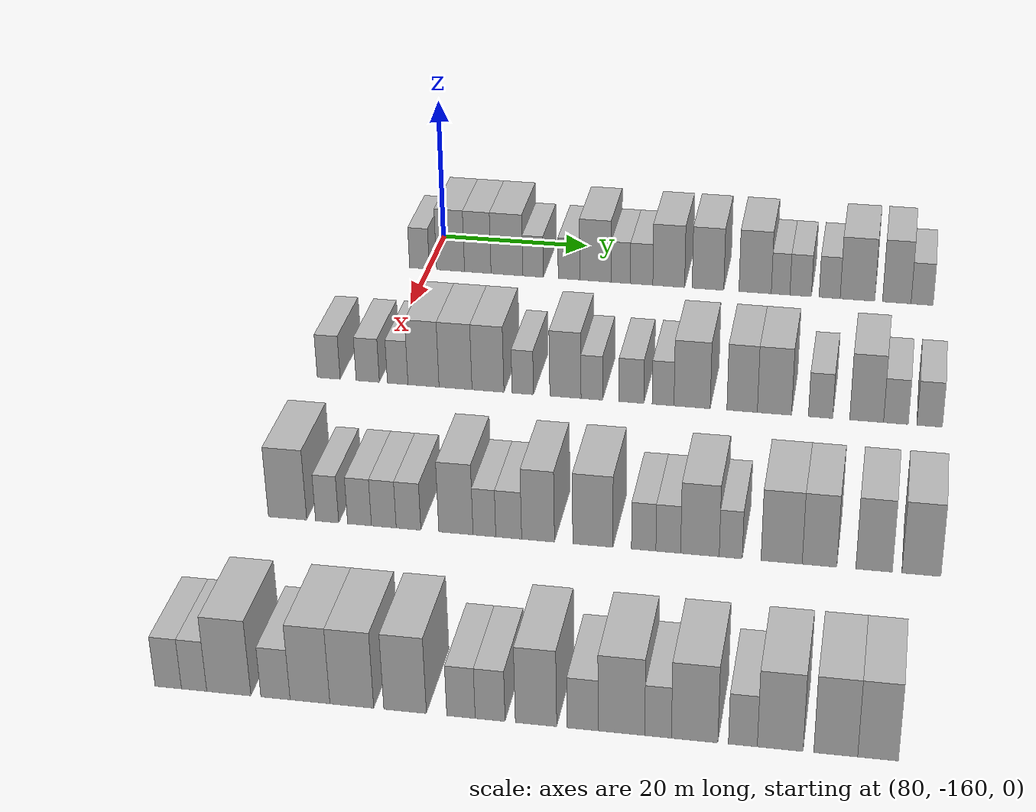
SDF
<sdf version="1.6">
 <world name="default">
  <model name="building_530">
   <static>1</static>
   <pose>85.0000 -161.2030 0 0.000000 0.000000 0.000000</pose>
   <link name="link">
    <pose>0 0 3.00 0 0 0</pose>
    <collision name="collision"><geometry><box><size>10.0000 2.6979 6.0000</size></box></geometry></collision>
    <visual name="visual">
     <cast_shadows>0</cast_shadows>
     <geometry><box><size>10.0000 2.6979 6.0000</size></box></geometry>
     <material>
      <script>
       <uri>model://HANNAS_wall/materials/scripts</uri>
       <uri>model://HANNAS_wall/materials/textures</uri>
       <name>vrc/HANNAS_wall</name>
      </script>
     </material>
    </visual>
   </link>
  </model>
  <model name="building_531">
   <static>1</static>
   <pose>85.0000 -156.9419 0 0.000000 0.000000 0.000000</pose>
   <link name="link">
    <pose>0 0 4.50 0 0 0</pose>
    <collision name="collision"><geometry><box><size>10.0000 3.8242 9.0000</size></box></geometry></collision>
    <visual name="visual">
     <cast_shadows>0</cast_shadows>
     <geometry><box><size>10.0000 3.8242 9.0000</size></box></geometry>
     <material>
      <script>
       <uri>model://HANNAS_wall/materials/scripts</uri>
       <uri>model://HANNAS_wall/materials/textures</uri>
       <name>vrc/HANNAS_wall</name>
      </script>
     </material>
    </visual>
   </link>
  </model>
  <model name="building_532">
   <static>1</static>
   <pose>85.0000 -153.2254 0 0.000000 0.000000 0.000000</pose>
   <link name="link">
    <pose>0 0 4.50 0 0 0</pose>
    <collision name="collision"><geometry><box><size>10.0000 3.6088 9.0000</size></box></geometry></collision>
    <visual name="visual">
     <cast_shadows>0</cast_shadows>
     <geometry><box><size>10.0000 3.6088 9.0000</size></box></geometry>
     <material>
      <script>
       <uri>model://HANNAS_wall/materials/scripts</uri>
       <uri>model://HANNAS_wall/materials/textures</uri>
       <name>vrc/HANNAS_wall</name>
      </script>
     </material>
    </visual>
   </link>
  </model>
  <model name="building_533">
   <static>1</static>
   <pose>85.0000 -149.2553 0 0.000000 0.000000 0.000000</pose>
   <link name="link">
    <pose>0 0 4.50 0 0 0</pose>
    <collision name="collision"><geometry><box><size>10.0000 4.3315 9.0000</size></box></geometry></collision>
    <visual name="visual">
     <cast_shadows>0</cast_shadows>
     <geometry><box><size>10.0000 4.3315 9.0000</size></box></geometry>
     <material>
      <script>
       <uri>model://HANNAS_wall/materials/scripts</uri>
       <uri>model://HANNAS_wall/materials/textures</uri>
       <name>vrc/HANNAS_wall</name>
      </script>
     </material>
    </visual>
   </link>
  </model>
  <model name="building_534">
   <static>1</static>
   <pose>85.0000 -145.7009 0 0.000000 0.000000 0.000000</pose>
   <link name="link">
    <pose>0 0 3.00 0 0 0</pose>
    <collision name="collision"><geometry><box><size>10.0000 2.7774 6.0000</size></box></geometry></collision>
    <visual name="visual">
     <cast_shadows>0</cast_shadows>
     <geometry><box><size>10.0000 2.7774 6.0000</size></box></geometry>
     <material>
      <script>
       <uri>model://HANNAS_wall/materials/scripts</uri>
       <uri>model://HANNAS_wall/materials/textures</uri>
       <name>vrc/HANNAS_wall</name>
      </script>
     </material>
    </visual>
   </link>
  </model>
  <model name="building_535">
   <static>1</static>
   <pose>85.0000 -140.8611 0 0.000000 0.000000 0.000000</pose>
   <link name="link">
    <pose>0 0 3.00 0 0 0</pose>
    <collision name="collision"><geometry><box><size>10.0000 2.9022 6.0000</size></box></geometry></collision>
    <visual name="visual">
     <cast_shadows>0</cast_shadows>
     <geometry><box><size>10.0000 2.9022 6.0000</size></box></geometry>
     <material>
      <script>
       <uri>model://HANNAS_wall/materials/scripts</uri>
       <uri>model://HANNAS_wall/materials/textures</uri>
       <name>vrc/HANNAS_wall</name>
      </script>
     </material>
    </visual>
   </link>
  </model>
  <model name="building_536">
   <static>1</static>
   <pose>85.0000 -137.3035 0 0.000000 0.000000 0.000000</pose>
   <link name="link">
    <pose>0 0 4.50 0 0 0</pose>
    <collision name="collision"><geometry><box><size>10.0000 4.2129 9.0000</size></box></geometry></collision>
    <visual name="visual">
     <cast_shadows>0</cast_shadows>
     <geometry><box><size>10.0000 4.2129 9.0000</size></box></geometry>
     <material>
      <script>
       <uri>model://HANNAS_wall/materials/scripts</uri>
       <uri>model://HANNAS_wall/materials/textures</uri>
       <name>vrc/HANNAS_wall</name>
      </script>
     </material>
    </visual>
   </link>
  </model>
  <model name="building_537">
   <static>1</static>
   <pose>85.0000 -133.9065 0 0.000000 0.000000 0.000000</pose>
   <link name="link">
    <pose>0 0 3.00 0 0 0</pose>
    <collision name="collision"><geometry><box><size>10.0000 2.5810 6.0000</size></box></geometry></collision>
    <visual name="visual">
     <cast_shadows>0</cast_shadows>
     <geometry><box><size>10.0000 2.5810 6.0000</size></box></geometry>
     <material>
      <script>
       <uri>model://HANNAS_wall/materials/scripts</uri>
       <uri>model://HANNAS_wall/materials/textures</uri>
       <name>vrc/HANNAS_wall</name>
      </script>
     </material>
    </visual>
   </link>
  </model>
  <model name="building_538">
   <static>1</static>
   <pose>85.0000 -131.1212 0 0.000000 0.000000 0.000000</pose>
   <link name="link">
    <pose>0 0 3.00 0 0 0</pose>
    <collision name="collision"><geometry><box><size>10.0000 2.9898 6.0000</size></box></geometry></collision>
    <visual name="visual">
     <cast_shadows>0</cast_shadows>
     <geometry><box><size>10.0000 2.9898 6.0000</size></box></geometry>
     <material>
      <script>
       <uri>model://HANNAS_wall/materials/scripts</uri>
       <uri>model://HANNAS_wall/materials/textures</uri>
       <name>vrc/HANNAS_wall</name>
      </script>
     </material>
    </visual>
   </link>
  </model>
  <model name="building_539">
   <static>1</static>
   <pose>85.0000 -127.5106 0 0.000000 0.000000 0.000000</pose>
   <link name="link">
    <pose>0 0 4.50 0 0 0</pose>
    <collision name="collision"><geometry><box><size>10.0000 4.2312 9.0000</size></box></geometry></collision>
    <visual name="visual">
     <cast_shadows>0</cast_shadows>
     <geometry><box><size>10.0000 4.2312 9.0000</size></box></geometry>
     <material>
      <script>
       <uri>model://HANNAS_wall/materials/scripts</uri>
       <uri>model://HANNAS_wall/materials/textures</uri>
       <name>vrc/HANNAS_wall</name>
      </script>
     </material>
    </visual>
   </link>
  </model>
  <model name="building_540">
   <static>1</static>
   <pose>85.0000 -122.3032 0 0.000000 0.000000 0.000000</pose>
   <link name="link">
    <pose>0 0 4.50 0 0 0</pose>
    <collision name="collision"><geometry><box><size>10.0000 4.1836 9.0000</size></box></geometry></collision>
    <visual name="visual">
     <cast_shadows>0</cast_shadows>
     <geometry><box><size>10.0000 4.1836 9.0000</size></box></geometry>
     <material>
      <script>
       <uri>model://HANNAS_wall/materials/scripts</uri>
       <uri>model://HANNAS_wall/materials/textures</uri>
       <name>vrc/HANNAS_wall</name>
      </script>
     </material>
    </visual>
   </link>
  </model>
  <model name="building_541">
   <static>1</static>
   <pose>85.0000 -116.0834 0 0.000000 0.000000 0.000000</pose>
   <link name="link">
    <pose>0 0 4.50 0 0 0</pose>
    <collision name="collision"><geometry><box><size>10.0000 4.2561 9.0000</size></box></geometry></collision>
    <visual name="visual">
     <cast_shadows>0</cast_shadows>
     <geometry><box><size>10.0000 4.2561 9.0000</size></box></geometry>
     <material>
      <script>
       <uri>model://HANNAS_wall/materials/scripts</uri>
       <uri>model://HANNAS_wall/materials/textures</uri>
       <name>vrc/HANNAS_wall</name>
      </script>
     </material>
    </visual>
   </link>
  </model>
  <model name="building_542">
   <static>1</static>
   <pose>85.0000 -112.7323 0 0.000000 0.000000 0.000000</pose>
   <link name="link">
    <pose>0 0 3.00 0 0 0</pose>
    <collision name="collision"><geometry><box><size>10.0000 2.4459 6.0000</size></box></geometry></collision>
    <visual name="visual">
     <cast_shadows>0</cast_shadows>
     <geometry><box><size>10.0000 2.4459 6.0000</size></box></geometry>
     <material>
      <script>
       <uri>model://HANNAS_wall/materials/scripts</uri>
       <uri>model://HANNAS_wall/materials/textures</uri>
       <name>vrc/HANNAS_wall</name>
      </script>
     </material>
    </visual>
   </link>
  </model>
  <model name="building_543">
   <static>1</static>
   <pose>85.0000 -110.1023 0 0.000000 0.000000 0.000000</pose>
   <link name="link">
    <pose>0 0 3.00 0 0 0</pose>
    <collision name="collision"><geometry><box><size>10.0000 2.8143 6.0000</size></box></geometry></collision>
    <visual name="visual">
     <cast_shadows>0</cast_shadows>
     <geometry><box><size>10.0000 2.8143 6.0000</size></box></geometry>
     <material>
      <script>
       <uri>model://HANNAS_wall/materials/scripts</uri>
       <uri>model://HANNAS_wall/materials/textures</uri>
       <name>vrc/HANNAS_wall</name>
      </script>
     </material>
    </visual>
   </link>
  </model>
  <model name="building_544">
   <static>1</static>
   <pose>85.0000 -106.3203 0 0.000000 0.000000 0.000000</pose>
   <link name="link">
    <pose>0 0 3.00 0 0 0</pose>
    <collision name="collision"><geometry><box><size>10.0000 2.7497 6.0000</size></box></geometry></collision>
    <visual name="visual">
     <cast_shadows>0</cast_shadows>
     <geometry><box><size>10.0000 2.7497 6.0000</size></box></geometry>
     <material>
      <script>
       <uri>model://HANNAS_wall/materials/scripts</uri>
       <uri>model://HANNAS_wall/materials/textures</uri>
       <name>vrc/HANNAS_wall</name>
      </script>
     </material>
    </visual>
   </link>
  </model>
  <model name="building_545">
   <static>1</static>
   <pose>85.0000 -102.6970 0 0.000000 0.000000 0.000000</pose>
   <link name="link">
    <pose>0 0 4.50 0 0 0</pose>
    <collision name="collision"><geometry><box><size>10.0000 4.4968 9.0000</size></box></geometry></collision>
    <visual name="visual">
     <cast_shadows>0</cast_shadows>
     <geometry><box><size>10.0000 4.4968 9.0000</size></box></geometry>
     <material>
      <script>
       <uri>model://HANNAS_wall/materials/scripts</uri>
       <uri>model://HANNAS_wall/materials/textures</uri>
       <name>vrc/HANNAS_wall</name>
      </script>
     </material>
    </visual>
   </link>
  </model>
  <model name="building_546">
   <static>1</static>
   <pose>85.0000 -97.6022 0 0.000000 0.000000 0.000000</pose>
   <link name="link">
    <pose>0 0 4.50 0 0 0</pose>
    <collision name="collision"><geometry><box><size>10.0000 3.6930 9.0000</size></box></geometry></collision>
    <visual name="visual">
     <cast_shadows>0</cast_shadows>
     <geometry><box><size>10.0000 3.6930 9.0000</size></box></geometry>
     <material>
      <script>
       <uri>model://HANNAS_wall/materials/scripts</uri>
       <uri>model://HANNAS_wall/materials/textures</uri>
       <name>vrc/HANNAS_wall</name>
      </script>
     </material>
    </visual>
   </link>
  </model>
  <model name="building_547">
   <static>1</static>
   <pose>85.0000 -94.3333 0 0.000000 0.000000 0.000000</pose>
   <link name="link">
    <pose>0 0 3.00 0 0 0</pose>
    <collision name="collision"><geometry><box><size>10.0000 2.8448 6.0000</size></box></geometry></collision>
    <visual name="visual">
     <cast_shadows>0</cast_shadows>
     <geometry><box><size>10.0000 2.8448 6.0000</size></box></geometry>
     <material>
      <script>
       <uri>model://HANNAS_wall/materials/scripts</uri>
       <uri>model://HANNAS_wall/materials/textures</uri>
       <name>vrc/HANNAS_wall</name>
      </script>
     </material>
    </visual>
   </link>
  </model>
  <model name="building_768">
   <static>1</static>
   <pose>115.0000 -165.5507 0 0.000000 0.000000 0.000000</pose>
   <link name="link">
    <pose>0 0 3.00 0 0 0</pose>
    <collision name="collision"><geometry><box><size>10.0000 2.8790 6.0000</size></box></geometry></collision>
    <visual name="visual">
     <cast_shadows>0</cast_shadows>
     <geometry><box><size>10.0000 2.8790 6.0000</size></box></geometry>
     <material>
      <script>
       <uri>model://HANNAS_wall/materials/scripts</uri>
       <uri>model://HANNAS_wall/materials/textures</uri>
       <name>vrc/HANNAS_wall</name>
      </script>
     </material>
    </visual>
   </link>
  </model>
  <model name="building_769">
   <static>1</static>
   <pose>115.0000 -160.6531 0 0.000000 0.000000 0.000000</pose>
   <link name="link">
    <pose>0 0 3.00 0 0 0</pose>
    <collision name="collision"><geometry><box><size>10.0000 2.9162 6.0000</size></box></geometry></collision>
    <visual name="visual">
     <cast_shadows>0</cast_shadows>
     <geometry><box><size>10.0000 2.9162 6.0000</size></box></geometry>
     <material>
      <script>
       <uri>model://HANNAS_wall/materials/scripts</uri>
       <uri>model://HANNAS_wall/materials/textures</uri>
       <name>vrc/HANNAS_wall</name>
      </script>
     </material>
    </visual>
   </link>
  </model>
  <model name="building_770">
   <static>1</static>
   <pose>115.0000 -156.9150 0 0.000000 0.000000 0.000000</pose>
   <link name="link">
    <pose>0 0 3.00 0 0 0</pose>
    <collision name="collision"><geometry><box><size>10.0000 2.5600 6.0000</size></box></geometry></collision>
    <visual name="visual">
     <cast_shadows>0</cast_shadows>
     <geometry><box><size>10.0000 2.5600 6.0000</size></box></geometry>
     <material>
      <script>
       <uri>model://HANNAS_wall/materials/scripts</uri>
       <uri>model://HANNAS_wall/materials/textures</uri>
       <name>vrc/HANNAS_wall</name>
      </script>
     </material>
    </visual>
   </link>
  </model>
  <model name="building_771">
   <static>1</static>
   <pose>115.0000 -153.7031 0 0.000000 0.000000 0.000000</pose>
   <link name="link">
    <pose>0 0 4.50 0 0 0</pose>
    <collision name="collision"><geometry><box><size>10.0000 3.8638 9.0000</size></box></geometry></collision>
    <visual name="visual">
     <cast_shadows>0</cast_shadows>
     <geometry><box><size>10.0000 3.8638 9.0000</size></box></geometry>
     <material>
      <script>
       <uri>model://HANNAS_wall/materials/scripts</uri>
       <uri>model://HANNAS_wall/materials/textures</uri>
       <name>vrc/HANNAS_wall</name>
      </script>
     </material>
    </visual>
   </link>
  </model>
  <model name="building_772">
   <static>1</static>
   <pose>115.0000 -149.7324 0 0.000000 0.000000 0.000000</pose>
   <link name="link">
    <pose>0 0 4.50 0 0 0</pose>
    <collision name="collision"><geometry><box><size>10.0000 4.0776 9.0000</size></box></geometry></collision>
    <visual name="visual">
     <cast_shadows>0</cast_shadows>
     <geometry><box><size>10.0000 4.0776 9.0000</size></box></geometry>
     <material>
      <script>
       <uri>model://HANNAS_wall/materials/scripts</uri>
       <uri>model://HANNAS_wall/materials/textures</uri>
       <name>vrc/HANNAS_wall</name>
      </script>
     </material>
    </visual>
   </link>
  </model>
  <model name="building_773">
   <static>1</static>
   <pose>115.0000 -145.7221 0 0.000000 0.000000 0.000000</pose>
   <link name="link">
    <pose>0 0 4.50 0 0 0</pose>
    <collision name="collision"><geometry><box><size>10.0000 3.9430 9.0000</size></box></geometry></collision>
    <visual name="visual">
     <cast_shadows>0</cast_shadows>
     <geometry><box><size>10.0000 3.9430 9.0000</size></box></geometry>
     <material>
      <script>
       <uri>model://HANNAS_wall/materials/scripts</uri>
       <uri>model://HANNAS_wall/materials/textures</uri>
       <name>vrc/HANNAS_wall</name>
      </script>
     </material>
    </visual>
   </link>
  </model>
  <model name="building_774">
   <static>1</static>
   <pose>115.0000 -141.4366 0 0.000000 0.000000 0.000000</pose>
   <link name="link">
    <pose>0 0 3.00 0 0 0</pose>
    <collision name="collision"><geometry><box><size>10.0000 2.6280 6.0000</size></box></geometry></collision>
    <visual name="visual">
     <cast_shadows>0</cast_shadows>
     <geometry><box><size>10.0000 2.6280 6.0000</size></box></geometry>
     <material>
      <script>
       <uri>model://HANNAS_wall/materials/scripts</uri>
       <uri>model://HANNAS_wall/materials/textures</uri>
       <name>vrc/HANNAS_wall</name>
      </script>
     </material>
    </visual>
   </link>
  </model>
  <model name="building_775">
   <static>1</static>
   <pose>115.0000 -136.2184 0 0.000000 0.000000 0.000000</pose>
   <link name="link">
    <pose>0 0 4.50 0 0 0</pose>
    <collision name="collision"><geometry><box><size>10.0000 3.8084 9.0000</size></box></geometry></collision>
    <visual name="visual">
     <cast_shadows>0</cast_shadows>
     <geometry><box><size>10.0000 3.8084 9.0000</size></box></geometry>
     <material>
      <script>
       <uri>model://HANNAS_wall/materials/scripts</uri>
       <uri>model://HANNAS_wall/materials/textures</uri>
       <name>vrc/HANNAS_wall</name>
      </script>
     </material>
    </visual>
   </link>
  </model>
  <model name="building_776">
   <static>1</static>
   <pose>115.0000 -133.0041 0 0.000000 0.000000 0.000000</pose>
   <link name="link">
    <pose>0 0 3.00 0 0 0</pose>
    <collision name="collision"><geometry><box><size>10.0000 2.6203 6.0000</size></box></geometry></collision>
    <visual name="visual">
     <cast_shadows>0</cast_shadows>
     <geometry><box><size>10.0000 2.6203 6.0000</size></box></geometry>
     <material>
      <script>
       <uri>model://HANNAS_wall/materials/scripts</uri>
       <uri>model://HANNAS_wall/materials/textures</uri>
       <name>vrc/HANNAS_wall</name>
      </script>
     </material>
    </visual>
   </link>
  </model>
  <model name="building_777">
   <static>1</static>
   <pose>115.0000 -128.1949 0 0.000000 0.000000 0.000000</pose>
   <link name="link">
    <pose>0 0 3.00 0 0 0</pose>
    <collision name="collision"><geometry><box><size>10.0000 2.9982 6.0000</size></box></geometry></collision>
    <visual name="visual">
     <cast_shadows>0</cast_shadows>
     <geometry><box><size>10.0000 2.9982 6.0000</size></box></geometry>
     <material>
      <script>
       <uri>model://HANNAS_wall/materials/scripts</uri>
       <uri>model://HANNAS_wall/materials/textures</uri>
       <name>vrc/HANNAS_wall</name>
      </script>
     </material>
    </visual>
   </link>
  </model>
  <model name="building_778">
   <static>1</static>
   <pose>115.0000 -124.3806 0 0.000000 0.000000 0.000000</pose>
   <link name="link">
    <pose>0 0 3.00 0 0 0</pose>
    <collision name="collision"><geometry><box><size>10.0000 2.6303 6.0000</size></box></geometry></collision>
    <visual name="visual">
     <cast_shadows>0</cast_shadows>
     <geometry><box><size>10.0000 2.6303 6.0000</size></box></geometry>
     <material>
      <script>
       <uri>model://HANNAS_wall/materials/scripts</uri>
       <uri>model://HANNAS_wall/materials/textures</uri>
       <name>vrc/HANNAS_wall</name>
      </script>
     </material>
    </visual>
   </link>
  </model>
  <model name="building_779">
   <static>1</static>
   <pose>115.0000 -120.8899 0 0.000000 0.000000 0.000000</pose>
   <link name="link">
    <pose>0 0 4.50 0 0 0</pose>
    <collision name="collision"><geometry><box><size>10.0000 4.3510 9.0000</size></box></geometry></collision>
    <visual name="visual">
     <cast_shadows>0</cast_shadows>
     <geometry><box><size>10.0000 4.3510 9.0000</size></box></geometry>
     <material>
      <script>
       <uri>model://HANNAS_wall/materials/scripts</uri>
       <uri>model://HANNAS_wall/materials/textures</uri>
       <name>vrc/HANNAS_wall</name>
      </script>
     </material>
    </visual>
   </link>
  </model>
  <model name="building_780">
   <static>1</static>
   <pose>115.0000 -114.8987 0 0.000000 0.000000 0.000000</pose>
   <link name="link">
    <pose>0 0 4.50 0 0 0</pose>
    <collision name="collision"><geometry><box><size>10.0000 3.6315 9.0000</size></box></geometry></collision>
    <visual name="visual">
     <cast_shadows>0</cast_shadows>
     <geometry><box><size>10.0000 3.6315 9.0000</size></box></geometry>
     <material>
      <script>
       <uri>model://HANNAS_wall/materials/scripts</uri>
       <uri>model://HANNAS_wall/materials/textures</uri>
       <name>vrc/HANNAS_wall</name>
      </script>
     </material>
    </visual>
   </link>
  </model>
  <model name="building_781">
   <static>1</static>
   <pose>115.0000 -111.0477 0 0.000000 0.000000 0.000000</pose>
   <link name="link">
    <pose>0 0 4.50 0 0 0</pose>
    <collision name="collision"><geometry><box><size>10.0000 4.0705 9.0000</size></box></geometry></collision>
    <visual name="visual">
     <cast_shadows>0</cast_shadows>
     <geometry><box><size>10.0000 4.0705 9.0000</size></box></geometry>
     <material>
      <script>
       <uri>model://HANNAS_wall/materials/scripts</uri>
       <uri>model://HANNAS_wall/materials/textures</uri>
       <name>vrc/HANNAS_wall</name>
      </script>
     </material>
    </visual>
   </link>
  </model>
  <model name="building_782">
   <static>1</static>
   <pose>115.0000 -105.5768 0 0.000000 0.000000 0.000000</pose>
   <link name="link">
    <pose>0 0 3.00 0 0 0</pose>
    <collision name="collision"><geometry><box><size>10.0000 2.8712 6.0000</size></box></geometry></collision>
    <visual name="visual">
     <cast_shadows>0</cast_shadows>
     <geometry><box><size>10.0000 2.8712 6.0000</size></box></geometry>
     <material>
      <script>
       <uri>model://HANNAS_wall/materials/scripts</uri>
       <uri>model://HANNAS_wall/materials/textures</uri>
       <name>vrc/HANNAS_wall</name>
      </script>
     </material>
    </visual>
   </link>
  </model>
  <model name="building_783">
   <static>1</static>
   <pose>115.0000 -100.1540 0 0.000000 0.000000 0.000000</pose>
   <link name="link">
    <pose>0 0 4.50 0 0 0</pose>
    <collision name="collision"><geometry><box><size>10.0000 3.9744 9.0000</size></box></geometry></collision>
    <visual name="visual">
     <cast_shadows>0</cast_shadows>
     <geometry><box><size>10.0000 3.9744 9.0000</size></box></geometry>
     <material>
      <script>
       <uri>model://HANNAS_wall/materials/scripts</uri>
       <uri>model://HANNAS_wall/materials/textures</uri>
       <name>vrc/HANNAS_wall</name>
      </script>
     </material>
    </visual>
   </link>
  </model>
  <model name="building_784">
   <static>1</static>
   <pose>115.0000 -96.7172 0 0.000000 0.000000 0.000000</pose>
   <link name="link">
    <pose>0 0 3.00 0 0 0</pose>
    <collision name="collision"><geometry><box><size>10.0000 2.8992 6.0000</size></box></geometry></collision>
    <visual name="visual">
     <cast_shadows>0</cast_shadows>
     <geometry><box><size>10.0000 2.8992 6.0000</size></box></geometry>
     <material>
      <script>
       <uri>model://HANNAS_wall/materials/scripts</uri>
       <uri>model://HANNAS_wall/materials/textures</uri>
       <name>vrc/HANNAS_wall</name>
      </script>
     </material>
    </visual>
   </link>
  </model>
  <model name="building_785">
   <static>1</static>
   <pose>115.0000 -92.7805 0 0.000000 0.000000 0.000000</pose>
   <link name="link">
    <pose>0 0 3.00 0 0 0</pose>
    <collision name="collision"><geometry><box><size>10.0000 2.9742 6.0000</size></box></geometry></collision>
    <visual name="visual">
     <cast_shadows>0</cast_shadows>
     <geometry><box><size>10.0000 2.9742 6.0000</size></box></geometry>
     <material>
      <script>
       <uri>model://HANNAS_wall/materials/scripts</uri>
       <uri>model://HANNAS_wall/materials/textures</uri>
       <name>vrc/HANNAS_wall</name>
      </script>
     </material>
    </visual>
   </link>
  </model>
  <model name="building_991">
   <static>1</static>
   <pose>145.0000 -162.0081 0 0.000000 0.000000 0.000000</pose>
   <link name="link">
    <pose>0 0 4.50 0 0 0</pose>
    <collision name="collision"><geometry><box><size>10.0000 4.3376 9.0000</size></box></geometry></collision>
    <visual name="visual">
     <cast_shadows>0</cast_shadows>
     <geometry><box><size>10.0000 4.3376 9.0000</size></box></geometry>
     <material>
      <script>
       <uri>model://HANNAS_wall/materials/scripts</uri>
       <uri>model://HANNAS_wall/materials/textures</uri>
       <name>vrc/HANNAS_wall</name>
      </script>
     </material>
    </visual>
   </link>
  </model>
  <model name="building_992">
   <static>1</static>
   <pose>145.0000 -157.5365 0 0.000000 0.000000 0.000000</pose>
   <link name="link">
    <pose>0 0 3.00 0 0 0</pose>
    <collision name="collision"><geometry><box><size>10.0000 2.6055 6.0000</size></box></geometry></collision>
    <visual name="visual">
     <cast_shadows>0</cast_shadows>
     <geometry><box><size>10.0000 2.6055 6.0000</size></box></geometry>
     <material>
      <script>
       <uri>model://HANNAS_wall/materials/scripts</uri>
       <uri>model://HANNAS_wall/materials/textures</uri>
       <name>vrc/HANNAS_wall</name>
      </script>
     </material>
    </visual>
   </link>
  </model>
  <model name="building_993">
   <static>1</static>
   <pose>145.0000 -153.8978 0 0.000000 0.000000 0.000000</pose>
   <link name="link">
    <pose>0 0 3.00 0 0 0</pose>
    <collision name="collision"><geometry><box><size>10.0000 2.6718 6.0000</size></box></geometry></collision>
    <visual name="visual">
     <cast_shadows>0</cast_shadows>
     <geometry><box><size>10.0000 2.6718 6.0000</size></box></geometry>
     <material>
      <script>
       <uri>model://HANNAS_wall/materials/scripts</uri>
       <uri>model://HANNAS_wall/materials/textures</uri>
       <name>vrc/HANNAS_wall</name>
      </script>
     </material>
    </visual>
   </link>
  </model>
  <model name="building_994">
   <static>1</static>
   <pose>145.0000 -151.1771 0 0.000000 0.000000 0.000000</pose>
   <link name="link">
    <pose>0 0 3.00 0 0 0</pose>
    <collision name="collision"><geometry><box><size>10.0000 2.7696 6.0000</size></box></geometry></collision>
    <visual name="visual">
     <cast_shadows>0</cast_shadows>
     <geometry><box><size>10.0000 2.7696 6.0000</size></box></geometry>
     <material>
      <script>
       <uri>model://HANNAS_wall/materials/scripts</uri>
       <uri>model://HANNAS_wall/materials/textures</uri>
       <name>vrc/HANNAS_wall</name>
      </script>
     </material>
    </visual>
   </link>
  </model>
  <model name="building_995">
   <static>1</static>
   <pose>145.0000 -148.4191 0 0.000000 0.000000 0.000000</pose>
   <link name="link">
    <pose>0 0 3.00 0 0 0</pose>
    <collision name="collision"><geometry><box><size>10.0000 2.7464 6.0000</size></box></geometry></collision>
    <visual name="visual">
     <cast_shadows>0</cast_shadows>
     <geometry><box><size>10.0000 2.7464 6.0000</size></box></geometry>
     <material>
      <script>
       <uri>model://HANNAS_wall/materials/scripts</uri>
       <uri>model://HANNAS_wall/materials/textures</uri>
       <name>vrc/HANNAS_wall</name>
      </script>
     </material>
    </visual>
   </link>
  </model>
  <model name="building_996">
   <static>1</static>
   <pose>145.0000 -143.1479 0 0.000000 0.000000 0.000000</pose>
   <link name="link">
    <pose>0 0 4.50 0 0 0</pose>
    <collision name="collision"><geometry><box><size>10.0000 3.7960 9.0000</size></box></geometry></collision>
    <visual name="visual">
     <cast_shadows>0</cast_shadows>
     <geometry><box><size>10.0000 3.7960 9.0000</size></box></geometry>
     <material>
      <script>
       <uri>model://HANNAS_wall/materials/scripts</uri>
       <uri>model://HANNAS_wall/materials/textures</uri>
       <name>vrc/HANNAS_wall</name>
      </script>
     </material>
    </visual>
   </link>
  </model>
  <model name="building_997">
   <static>1</static>
   <pose>145.0000 -139.9965 0 0.000000 0.000000 0.000000</pose>
   <link name="link">
    <pose>0 0 3.00 0 0 0</pose>
    <collision name="collision"><geometry><box><size>10.0000 2.5069 6.0000</size></box></geometry></collision>
    <visual name="visual">
     <cast_shadows>0</cast_shadows>
     <geometry><box><size>10.0000 2.5069 6.0000</size></box></geometry>
     <material>
      <script>
       <uri>model://HANNAS_wall/materials/scripts</uri>
       <uri>model://HANNAS_wall/materials/textures</uri>
       <name>vrc/HANNAS_wall</name>
      </script>
     </material>
    </visual>
   </link>
  </model>
  <model name="building_998">
   <static>1</static>
   <pose>145.0000 -137.3189 0 0.000000 0.000000 0.000000</pose>
   <link name="link">
    <pose>0 0 3.00 0 0 0</pose>
    <collision name="collision"><geometry><box><size>10.0000 2.8484 6.0000</size></box></geometry></collision>
    <visual name="visual">
     <cast_shadows>0</cast_shadows>
     <geometry><box><size>10.0000 2.8484 6.0000</size></box></geometry>
     <material>
      <script>
       <uri>model://HANNAS_wall/materials/scripts</uri>
       <uri>model://HANNAS_wall/materials/textures</uri>
       <name>vrc/HANNAS_wall</name>
      </script>
     </material>
    </visual>
   </link>
  </model>
  <model name="building_999">
   <static>1</static>
   <pose>145.0000 -134.0924 0 0.000000 0.000000 0.000000</pose>
   <link name="link">
    <pose>0 0 4.50 0 0 0</pose>
    <collision name="collision"><geometry><box><size>10.0000 3.6045 9.0000</size></box></geometry></collision>
    <visual name="visual">
     <cast_shadows>0</cast_shadows>
     <geometry><box><size>10.0000 3.6045 9.0000</size></box></geometry>
     <material>
      <script>
       <uri>model://HANNAS_wall/materials/scripts</uri>
       <uri>model://HANNAS_wall/materials/textures</uri>
       <name>vrc/HANNAS_wall</name>
      </script>
     </material>
    </visual>
   </link>
  </model>
  <model name="building_1000">
   <static>1</static>
   <pose>145.0000 -128.1006 0 0.000000 0.000000 0.000000</pose>
   <link name="link">
    <pose>0 0 4.50 0 0 0</pose>
    <collision name="collision"><geometry><box><size>10.0000 4.3791 9.0000</size></box></geometry></collision>
    <visual name="visual">
     <cast_shadows>0</cast_shadows>
     <geometry><box><size>10.0000 4.3791 9.0000</size></box></geometry>
     <material>
      <script>
       <uri>model://HANNAS_wall/materials/scripts</uri>
       <uri>model://HANNAS_wall/materials/textures</uri>
       <name>vrc/HANNAS_wall</name>
      </script>
     </material>
    </visual>
   </link>
  </model>
  <model name="building_1001">
   <static>1</static>
   <pose>145.0000 -122.5898 0 0.000000 0.000000 0.000000</pose>
   <link name="link">
    <pose>0 0 3.00 0 0 0</pose>
    <collision name="collision"><geometry><box><size>10.0000 2.6425 6.0000</size></box></geometry></collision>
    <visual name="visual">
     <cast_shadows>0</cast_shadows>
     <geometry><box><size>10.0000 2.6425 6.0000</size></box></geometry>
     <material>
      <script>
       <uri>model://HANNAS_wall/materials/scripts</uri>
       <uri>model://HANNAS_wall/materials/textures</uri>
       <name>vrc/HANNAS_wall</name>
      </script>
     </material>
    </visual>
   </link>
  </model>
  <model name="building_1002">
   <static>1</static>
   <pose>145.0000 -119.9356 0 0.000000 0.000000 0.000000</pose>
   <link name="link">
    <pose>0 0 3.00 0 0 0</pose>
    <collision name="collision"><geometry><box><size>10.0000 2.6659 6.0000</size></box></geometry></collision>
    <visual name="visual">
     <cast_shadows>0</cast_shadows>
     <geometry><box><size>10.0000 2.6659 6.0000</size></box></geometry>
     <material>
      <script>
       <uri>model://HANNAS_wall/materials/scripts</uri>
       <uri>model://HANNAS_wall/materials/textures</uri>
       <name>vrc/HANNAS_wall</name>
      </script>
     </material>
    </visual>
   </link>
  </model>
  <model name="building_1003">
   <static>1</static>
   <pose>145.0000 -116.5298 0 0.000000 0.000000 0.000000</pose>
   <link name="link">
    <pose>0 0 4.50 0 0 0</pose>
    <collision name="collision"><geometry><box><size>10.0000 4.1457 9.0000</size></box></geometry></collision>
    <visual name="visual">
     <cast_shadows>0</cast_shadows>
     <geometry><box><size>10.0000 4.1457 9.0000</size></box></geometry>
     <material>
      <script>
       <uri>model://HANNAS_wall/materials/scripts</uri>
       <uri>model://HANNAS_wall/materials/textures</uri>
       <name>vrc/HANNAS_wall</name>
      </script>
     </material>
    </visual>
   </link>
  </model>
  <model name="building_1004">
   <static>1</static>
   <pose>145.0000 -113.2217 0 0.000000 0.000000 0.000000</pose>
   <link name="link">
    <pose>0 0 3.00 0 0 0</pose>
    <collision name="collision"><geometry><box><size>10.0000 2.4706 6.0000</size></box></geometry></collision>
    <visual name="visual">
     <cast_shadows>0</cast_shadows>
     <geometry><box><size>10.0000 2.4706 6.0000</size></box></geometry>
     <material>
      <script>
       <uri>model://HANNAS_wall/materials/scripts</uri>
       <uri>model://HANNAS_wall/materials/textures</uri>
       <name>vrc/HANNAS_wall</name>
      </script>
     </material>
    </visual>
   </link>
  </model>
  <model name="building_1005">
   <static>1</static>
   <pose>145.0000 -107.7957 0 0.000000 0.000000 0.000000</pose>
   <link name="link">
    <pose>0 0 4.50 0 0 0</pose>
    <collision name="collision"><geometry><box><size>10.0000 4.3813 9.0000</size></box></geometry></collision>
    <visual name="visual">
     <cast_shadows>0</cast_shadows>
     <geometry><box><size>10.0000 4.3813 9.0000</size></box></geometry>
     <material>
      <script>
       <uri>model://HANNAS_wall/materials/scripts</uri>
       <uri>model://HANNAS_wall/materials/textures</uri>
       <name>vrc/HANNAS_wall</name>
      </script>
     </material>
    </visual>
   </link>
  </model>
  <model name="building_1006">
   <static>1</static>
   <pose>145.0000 -103.7711 0 0.000000 0.000000 0.000000</pose>
   <link name="link">
    <pose>0 0 4.50 0 0 0</pose>
    <collision name="collision"><geometry><box><size>10.0000 3.6681 9.0000</size></box></geometry></collision>
    <visual name="visual">
     <cast_shadows>0</cast_shadows>
     <geometry><box><size>10.0000 3.6681 9.0000</size></box></geometry>
     <material>
      <script>
       <uri>model://HANNAS_wall/materials/scripts</uri>
       <uri>model://HANNAS_wall/materials/textures</uri>
       <name>vrc/HANNAS_wall</name>
      </script>
     </material>
    </visual>
   </link>
  </model>
  <model name="building_1007">
   <static>1</static>
   <pose>145.0000 -98.0157 0 0.000000 0.000000 0.000000</pose>
   <link name="link">
    <pose>0 0 4.50 0 0 0</pose>
    <collision name="collision"><geometry><box><size>10.0000 3.8425 9.0000</size></box></geometry></collision>
    <visual name="visual">
     <cast_shadows>0</cast_shadows>
     <geometry><box><size>10.0000 3.8425 9.0000</size></box></geometry>
     <material>
      <script>
       <uri>model://HANNAS_wall/materials/scripts</uri>
       <uri>model://HANNAS_wall/materials/textures</uri>
       <name>vrc/HANNAS_wall</name>
      </script>
     </material>
    </visual>
   </link>
  </model>
  <model name="building_1008">
   <static>1</static>
   <pose>145.0000 -93.0559 0 0.000000 0.000000 0.000000</pose>
   <link name="link">
    <pose>0 0 4.50 0 0 0</pose>
    <collision name="collision"><geometry><box><size>10.0000 4.0772 9.0000</size></box></geometry></collision>
    <visual name="visual">
     <cast_shadows>0</cast_shadows>
     <geometry><box><size>10.0000 4.0772 9.0000</size></box></geometry>
     <material>
      <script>
       <uri>model://HANNAS_wall/materials/scripts</uri>
       <uri>model://HANNAS_wall/materials/textures</uri>
       <name>vrc/HANNAS_wall</name>
      </script>
     </material>
    </visual>
   </link>
  </model>
  <model name="building_1225">
   <static>1</static>
   <pose>175.0000 -165.3035 0 0.000000 0.000000 0.000000</pose>
   <link name="link">
    <pose>0 0 3.00 0 0 0</pose>
    <collision name="collision"><geometry><box><size>10.0000 2.6813 6.0000</size></box></geometry></collision>
    <visual name="visual">
     <cast_shadows>0</cast_shadows>
     <geometry><box><size>10.0000 2.6813 6.0000</size></box></geometry>
     <material>
      <script>
       <uri>model://HANNAS_wall/materials/scripts</uri>
       <uri>model://HANNAS_wall/materials/textures</uri>
       <name>vrc/HANNAS_wall</name>
      </script>
     </material>
    </visual>
   </link>
  </model>
  <model name="building_1226">
   <static>1</static>
   <pose>175.0000 -162.6835 0 0.000000 0.000000 0.000000</pose>
   <link name="link">
    <pose>0 0 3.00 0 0 0</pose>
    <collision name="collision"><geometry><box><size>10.0000 2.5587 6.0000</size></box></geometry></collision>
    <visual name="visual">
     <cast_shadows>0</cast_shadows>
     <geometry><box><size>10.0000 2.5587 6.0000</size></box></geometry>
     <material>
      <script>
       <uri>model://HANNAS_wall/materials/scripts</uri>
       <uri>model://HANNAS_wall/materials/textures</uri>
       <name>vrc/HANNAS_wall</name>
      </script>
     </material>
    </visual>
   </link>
  </model>
  <model name="building_1227">
   <static>1</static>
   <pose>175.0000 -159.1778 0 0.000000 0.000000 0.000000</pose>
   <link name="link">
    <pose>0 0 4.50 0 0 0</pose>
    <collision name="collision"><geometry><box><size>10.0000 4.4527 9.0000</size></box></geometry></collision>
    <visual name="visual">
     <cast_shadows>0</cast_shadows>
     <geometry><box><size>10.0000 4.4527 9.0000</size></box></geometry>
     <material>
      <script>
       <uri>model://HANNAS_wall/materials/scripts</uri>
       <uri>model://HANNAS_wall/materials/textures</uri>
       <name>vrc/HANNAS_wall</name>
      </script>
     </material>
    </visual>
   </link>
  </model>
  <model name="building_1228">
   <static>1</static>
   <pose>175.0000 -154.4873 0 0.000000 0.000000 0.000000</pose>
   <link name="link">
    <pose>0 0 3.00 0 0 0</pose>
    <collision name="collision"><geometry><box><size>10.0000 2.9283 6.0000</size></box></geometry></collision>
    <visual name="visual">
     <cast_shadows>0</cast_shadows>
     <geometry><box><size>10.0000 2.9283 6.0000</size></box></geometry>
     <material>
      <script>
       <uri>model://HANNAS_wall/materials/scripts</uri>
       <uri>model://HANNAS_wall/materials/textures</uri>
       <name>vrc/HANNAS_wall</name>
      </script>
     </material>
    </visual>
   </link>
  </model>
  <model name="building_1229">
   <static>1</static>
   <pose>175.0000 -151.0395 0 0.000000 0.000000 0.000000</pose>
   <link name="link">
    <pose>0 0 4.50 0 0 0</pose>
    <collision name="collision"><geometry><box><size>10.0000 3.9673 9.0000</size></box></geometry></collision>
    <visual name="visual">
     <cast_shadows>0</cast_shadows>
     <geometry><box><size>10.0000 3.9673 9.0000</size></box></geometry>
     <material>
      <script>
       <uri>model://HANNAS_wall/materials/scripts</uri>
       <uri>model://HANNAS_wall/materials/textures</uri>
       <name>vrc/HANNAS_wall</name>
      </script>
     </material>
    </visual>
   </link>
  </model>
  <model name="building_1230">
   <static>1</static>
   <pose>175.0000 -146.8803 0 0.000000 0.000000 0.000000</pose>
   <link name="link">
    <pose>0 0 4.50 0 0 0</pose>
    <collision name="collision"><geometry><box><size>10.0000 4.3512 9.0000</size></box></geometry></collision>
    <visual name="visual">
     <cast_shadows>0</cast_shadows>
     <geometry><box><size>10.0000 4.3512 9.0000</size></box></geometry>
     <material>
      <script>
       <uri>model://HANNAS_wall/materials/scripts</uri>
       <uri>model://HANNAS_wall/materials/textures</uri>
       <name>vrc/HANNAS_wall</name>
      </script>
     </material>
    </visual>
   </link>
  </model>
  <model name="building_1231">
   <static>1</static>
   <pose>175.0000 -141.6088 0 0.000000 0.000000 0.000000</pose>
   <link name="link">
    <pose>0 0 4.50 0 0 0</pose>
    <collision name="collision"><geometry><box><size>10.0000 4.1918 9.0000</size></box></geometry></collision>
    <visual name="visual">
     <cast_shadows>0</cast_shadows>
     <geometry><box><size>10.0000 4.1918 9.0000</size></box></geometry>
     <material>
      <script>
       <uri>model://HANNAS_wall/materials/scripts</uri>
       <uri>model://HANNAS_wall/materials/textures</uri>
       <name>vrc/HANNAS_wall</name>
      </script>
     </material>
    </visual>
   </link>
  </model>
  <model name="building_1232">
   <static>1</static>
   <pose>175.0000 -136.1233 0 0.000000 0.000000 0.000000</pose>
   <link name="link">
    <pose>0 0 3.00 0 0 0</pose>
    <collision name="collision"><geometry><box><size>10.0000 2.7791 6.0000</size></box></geometry></collision>
    <visual name="visual">
     <cast_shadows>0</cast_shadows>
     <geometry><box><size>10.0000 2.7791 6.0000</size></box></geometry>
     <material>
      <script>
       <uri>model://HANNAS_wall/materials/scripts</uri>
       <uri>model://HANNAS_wall/materials/textures</uri>
       <name>vrc/HANNAS_wall</name>
      </script>
     </material>
    </visual>
   </link>
  </model>
  <model name="building_1233">
   <static>1</static>
   <pose>175.0000 -133.2765 0 0.000000 0.000000 0.000000</pose>
   <link name="link">
    <pose>0 0 3.00 0 0 0</pose>
    <collision name="collision"><geometry><box><size>10.0000 2.9144 6.0000</size></box></geometry></collision>
    <visual name="visual">
     <cast_shadows>0</cast_shadows>
     <geometry><box><size>10.0000 2.9144 6.0000</size></box></geometry>
     <material>
      <script>
       <uri>model://HANNAS_wall/materials/scripts</uri>
       <uri>model://HANNAS_wall/materials/textures</uri>
       <name>vrc/HANNAS_wall</name>
      </script>
     </material>
    </visual>
   </link>
  </model>
  <model name="building_1234">
   <static>1</static>
   <pose>175.0000 -128.8147 0 0.000000 0.000000 0.000000</pose>
   <link name="link">
    <pose>0 0 4.50 0 0 0</pose>
    <collision name="collision"><geometry><box><size>10.0000 4.0092 9.0000</size></box></geometry></collision>
    <visual name="visual">
     <cast_shadows>0</cast_shadows>
     <geometry><box><size>10.0000 4.0092 9.0000</size></box></geometry>
     <material>
      <script>
       <uri>model://HANNAS_wall/materials/scripts</uri>
       <uri>model://HANNAS_wall/materials/textures</uri>
       <name>vrc/HANNAS_wall</name>
      </script>
     </material>
    </visual>
   </link>
  </model>
  <model name="building_1235">
   <static>1</static>
   <pose>175.0000 -124.3215 0 0.000000 0.000000 0.000000</pose>
   <link name="link">
    <pose>0 0 3.00 0 0 0</pose>
    <collision name="collision"><geometry><box><size>10.0000 2.9772 6.0000</size></box></geometry></collision>
    <visual name="visual">
     <cast_shadows>0</cast_shadows>
     <geometry><box><size>10.0000 2.9772 6.0000</size></box></geometry>
     <material>
      <script>
       <uri>model://HANNAS_wall/materials/scripts</uri>
       <uri>model://HANNAS_wall/materials/textures</uri>
       <name>vrc/HANNAS_wall</name>
      </script>
     </material>
    </visual>
   </link>
  </model>
  <model name="building_1236">
   <static>1</static>
   <pose>175.0000 -120.5959 0 0.000000 0.000000 0.000000</pose>
   <link name="link">
    <pose>0 0 4.50 0 0 0</pose>
    <collision name="collision"><geometry><box><size>10.0000 4.4741 9.0000</size></box></geometry></collision>
    <visual name="visual">
     <cast_shadows>0</cast_shadows>
     <geometry><box><size>10.0000 4.4741 9.0000</size></box></geometry>
     <material>
      <script>
       <uri>model://HANNAS_wall/materials/scripts</uri>
       <uri>model://HANNAS_wall/materials/textures</uri>
       <name>vrc/HANNAS_wall</name>
      </script>
     </material>
    </visual>
   </link>
  </model>
  <model name="building_1237">
   <static>1</static>
   <pose>175.0000 -117.0910 0 0.000000 0.000000 0.000000</pose>
   <link name="link">
    <pose>0 0 3.00 0 0 0</pose>
    <collision name="collision"><geometry><box><size>10.0000 2.5358 6.0000</size></box></geometry></collision>
    <visual name="visual">
     <cast_shadows>0</cast_shadows>
     <geometry><box><size>10.0000 2.5358 6.0000</size></box></geometry>
     <material>
      <script>
       <uri>model://HANNAS_wall/materials/scripts</uri>
       <uri>model://HANNAS_wall/materials/textures</uri>
       <name>vrc/HANNAS_wall</name>
      </script>
     </material>
    </visual>
   </link>
  </model>
  <model name="building_1238">
   <static>1</static>
   <pose>175.0000 -113.6127 0 0.000000 0.000000 0.000000</pose>
   <link name="link">
    <pose>0 0 4.50 0 0 0</pose>
    <collision name="collision"><geometry><box><size>10.0000 4.4207 9.0000</size></box></geometry></collision>
    <visual name="visual">
     <cast_shadows>0</cast_shadows>
     <geometry><box><size>10.0000 4.4207 9.0000</size></box></geometry>
     <material>
      <script>
       <uri>model://HANNAS_wall/materials/scripts</uri>
       <uri>model://HANNAS_wall/materials/textures</uri>
       <name>vrc/HANNAS_wall</name>
      </script>
     </material>
    </visual>
   </link>
  </model>
  <model name="building_1239">
   <static>1</static>
   <pose>175.0000 -109.0387 0 0.000000 0.000000 0.000000</pose>
   <link name="link">
    <pose>0 0 3.00 0 0 0</pose>
    <collision name="collision"><geometry><box><size>10.0000 2.7274 6.0000</size></box></geometry></collision>
    <visual name="visual">
     <cast_shadows>0</cast_shadows>
     <geometry><box><size>10.0000 2.7274 6.0000</size></box></geometry>
     <material>
      <script>
       <uri>model://HANNAS_wall/materials/scripts</uri>
       <uri>model://HANNAS_wall/materials/textures</uri>
       <name>vrc/HANNAS_wall</name>
      </script>
     </material>
    </visual>
   </link>
  </model>
  <model name="building_1240">
   <static>1</static>
   <pose>175.0000 -105.5237 0 0.000000 0.000000 0.000000</pose>
   <link name="link">
    <pose>0 0 4.50 0 0 0</pose>
    <collision name="collision"><geometry><box><size>10.0000 4.3027 9.0000</size></box></geometry></collision>
    <visual name="visual">
     <cast_shadows>0</cast_shadows>
     <geometry><box><size>10.0000 4.3027 9.0000</size></box></geometry>
     <material>
      <script>
       <uri>model://HANNAS_wall/materials/scripts</uri>
       <uri>model://HANNAS_wall/materials/textures</uri>
       <name>vrc/HANNAS_wall</name>
      </script>
     </material>
    </visual>
   </link>
  </model>
  <model name="building_1241">
   <static>1</static>
   <pose>175.0000 -100.3238 0 0.000000 0.000000 0.000000</pose>
   <link name="link">
    <pose>0 0 4.50 0 0 0</pose>
    <collision name="collision"><geometry><box><size>10.0000 4.0970 9.0000</size></box></geometry></collision>
    <visual name="visual">
     <cast_shadows>0</cast_shadows>
     <geometry><box><size>10.0000 4.0970 9.0000</size></box></geometry>
     <material>
      <script>
       <uri>model://HANNAS_wall/materials/scripts</uri>
       <uri>model://HANNAS_wall/materials/textures</uri>
       <name>vrc/HANNAS_wall</name>
      </script>
     </material>
    </visual>
   </link>
  </model>
  <model name="building_1242">
   <static>1</static>
   <pose>175.0000 -96.3876 0 0.000000 0.000000 0.000000</pose>
   <link name="link">
    <pose>0 0 4.50 0 0 0</pose>
    <collision name="collision"><geometry><box><size>10.0000 3.7753 9.0000</size></box></geometry></collision>
    <visual name="visual">
     <cast_shadows>0</cast_shadows>
     <geometry><box><size>10.0000 3.7753 9.0000</size></box></geometry>
     <material>
      <script>
       <uri>model://HANNAS_wall/materials/scripts</uri>
       <uri>model://HANNAS_wall/materials/textures</uri>
       <name>vrc/HANNAS_wall</name>
      </script>
     </material>
    </visual>
   </link>
  </model>
 </world>
</sdf>
